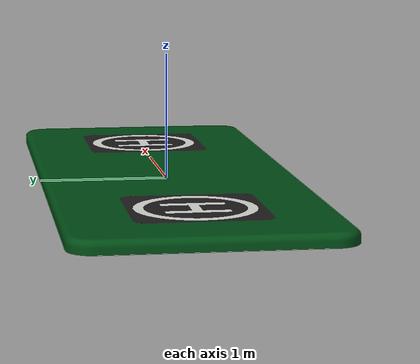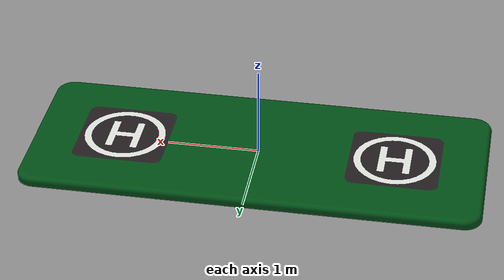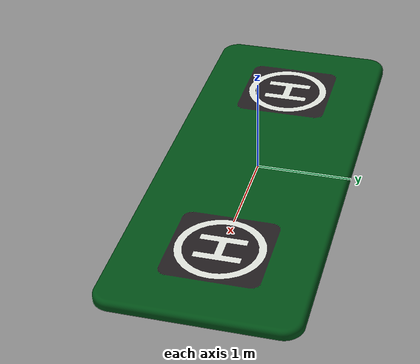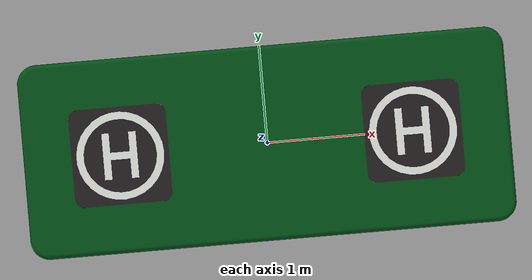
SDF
<?xml version="1.0" ?>
<sdf version="1.5">
  <model name="refilling_station">
    <static>true</static>
    <link name="link">
      <pose>0 0 0 0 0 0</pose>

      <visual name="visual">
        <cast_shadows>false</cast_shadows>
        <geometry>
          <mesh>
            <uri>model://refilling_station/meshes/refilling_station.dae</uri>
            <scale>1 1 1</scale> <!-- scale 1 equals to length of 40 meters. It is recommended to only change X scaling -->
          </mesh>
        </geometry>
      </visual>

      <collision name="collision">
        <geometry>
          <mesh>
            <uri>model://refilling_station/meshes/refilling_station.dae</uri>
            <scale>1 1 1</scale> <!-- scale 1 equals to length of 40 meters. It is recommended to only change X scaling -->
          </mesh>
        </geometry>
      </collision>

    </link>
  </model>
</sdf>
